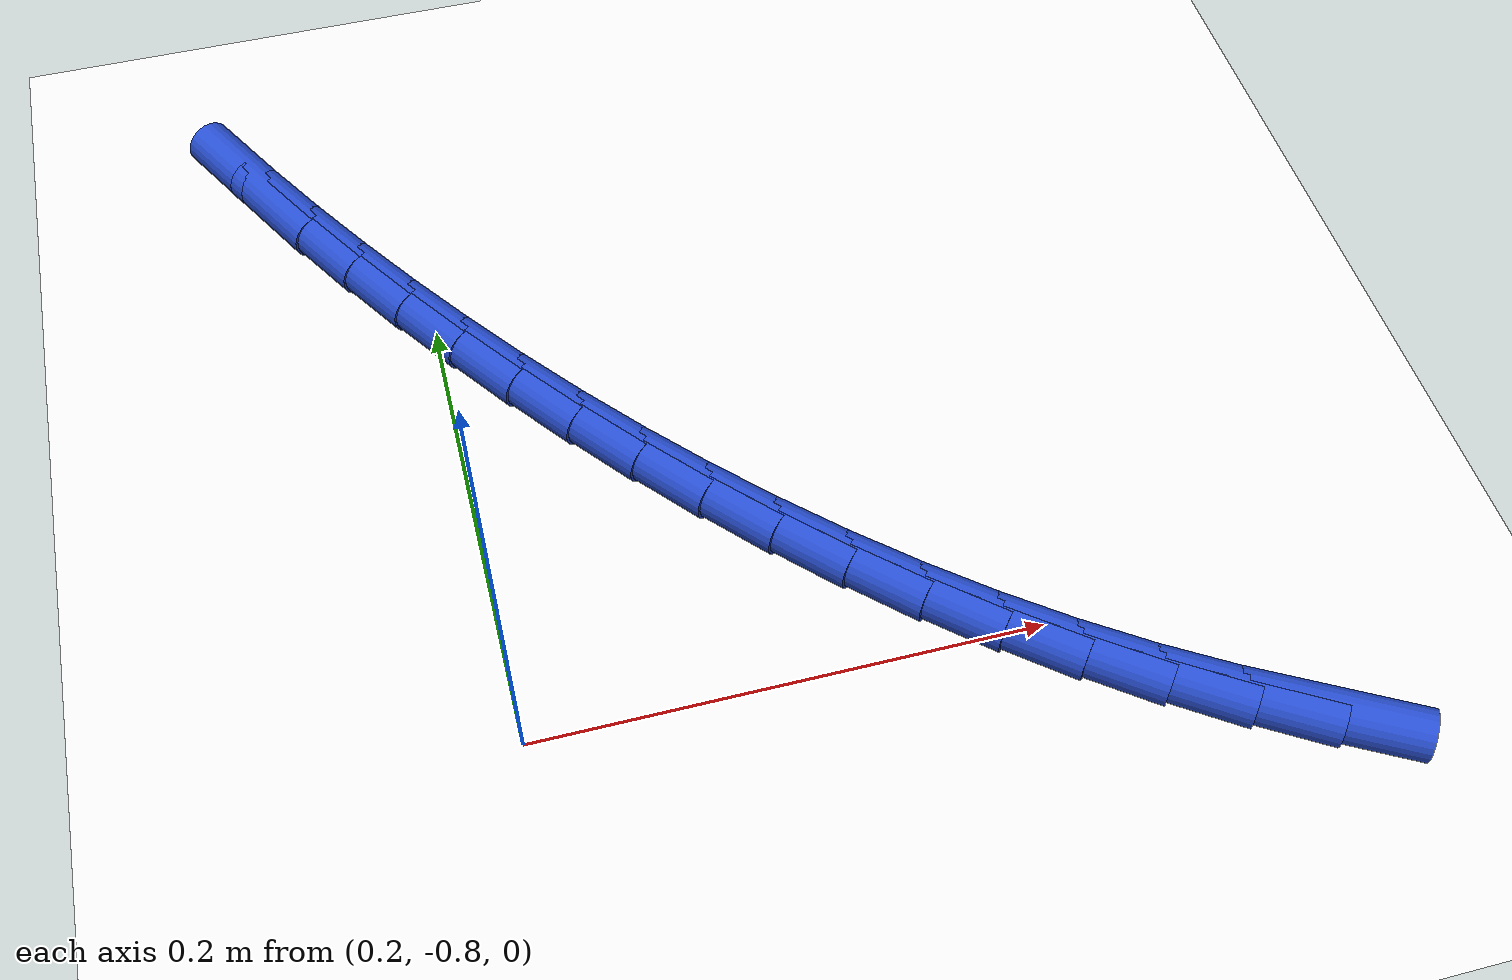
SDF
<sdf version="1.6">
 <world name="default">
  <model name="ground_plane">
   <static>1</static>
   <link name="link">
    <collision name="collision">
     <geometry><plane><normal>0 0 1</normal><size>100 100</size></plane></geometry>
     <surface><friction><ode><mu>100</mu><mu2>50</mu2></ode></friction></surface>
    </collision>
    <visual name="visual">
     <cast_shadows>0</cast_shadows>
     <geometry><plane><normal>0 0 1</normal><size>100 100</size></plane></geometry>
     <material>
      <script><uri>file://media/materials/scripts/gazebo.material</uri><name>Gazebo/WhiteGlow</name></script>
     </material>
    </visual>
   </link>
  </model>
  <model name="line">
   <link name="link_177">
    <pose>0.4807668284014739 -0.8642831028752944 0.01 0 1.57 -0.5142089864139942</pose>
    <collision name="collision">
     <geometry><cylinder><radius>0.01</radius><length>0.08</length></cylinder></geometry>
    </collision>
    <visual name="visual">
     <material>
      <script><name>Gazebo/Blue</name><uri>file://media/materials/scripts/gazebo.material</uri></script>
     </material>
     <geometry><cylinder><radius>0.01</radius><length>0.08</length></cylinder></geometry>
    </visual>
   </link>
   <link name="link_178">
    <pose>0.4540423060394703 -0.8491864818684237 0.01 0 1.57 -0.5630628116542696</pose>
    <collision name="collision">
     <geometry><cylinder><radius>0.01</radius><length>0.08</length></cylinder></geometry>
    </collision>
    <visual name="visual">
     <material>
      <script><name>Gazebo/Blue</name><uri>file://media/materials/scripts/gazebo.material</uri></script>
     </material>
     <geometry><cylinder><radius>0.01</radius><length>0.08</length></cylinder></geometry>
    </visual>
   </link>
   <link name="link_179">
    <pose>0.42802987667862774 -0.8327668003176407 0.01 0 1.57 -0.6104504864343999</pose>
    <collision name="collision">
     <geometry><cylinder><radius>0.01</radius><length>0.08</length></cylinder></geometry>
    </collision>
    <visual name="visual">
     <material>
      <script><name>Gazebo/Blue</name><uri>file://media/materials/scripts/gazebo.material</uri></script>
     </material>
     <geometry><cylinder><radius>0.01</radius><length>0.08</length></cylinder></geometry>
    </visual>
   </link>
   <link name="link_180">
    <pose>0.40273554128945893 -0.8150711459111458 0.01 0 1.57 -0.6552863511071776</pose>
    <collision name="collision">
     <geometry><cylinder><radius>0.01</radius><length>0.08</length></cylinder></geometry>
    </collision>
    <visual name="visual">
     <material>
      <script><name>Gazebo/Blue</name><uri>file://media/materials/scripts/gazebo.material</uri></script>
     </material>
     <geometry><cylinder><radius>0.01</radius><length>0.08</length></cylinder></geometry>
    </visual>
   </link>
   <link name="link_181">
    <pose>0.3781567804390839 -0.7961804135851012 0.01 0 1.57 -0.6976202950283533</pose>
    <collision name="collision">
     <geometry><cylinder><radius>0.01</radius><length>0.08</length></cylinder></geometry>
    </collision>
    <visual name="visual">
     <material>
      <script><name>Gazebo/Blue</name><uri>file://media/materials/scripts/gazebo.material</uri></script>
     </material>
     <geometry><cylinder><radius>0.01</radius><length>0.08</length></cylinder></geometry>
    </visual>
   </link>
   <link name="link_182">
    <pose>0.3542910746946218 -0.7761754982756668 0.01 0 1.57 -0.7375323963409737</pose>
    <collision name="collision">
     <geometry><cylinder><radius>0.01</radius><length>0.08</length></cylinder></geometry>
    </collision>
    <visual name="visual">
     <material>
      <script><name>Gazebo/Blue</name><uri>file://media/materials/scripts/gazebo.material</uri></script>
     </material>
     <geometry><cylinder><radius>0.01</radius><length>0.08</length></cylinder></geometry>
    </visual>
   </link>
   <link name="link_183">
    <pose>0.3311359046231913 -0.7551372949190032 0.01 0 1.57 -0.7751244367295861</pose>
    <collision name="collision">
     <geometry><cylinder><radius>0.01</radius><length>0.08</length></cylinder></geometry>
    </collision>
    <visual name="visual">
     <material>
      <script><name>Gazebo/Blue</name><uri>file://media/materials/scripts/gazebo.material</uri></script>
     </material>
     <geometry><cylinder><radius>0.01</radius><length>0.08</length></cylinder></geometry>
    </visual>
   </link>
   <link name="link_184">
    <pose>0.3086887507919128 -0.7331466984512721 0.01 0 1.57 -0.8105126884951711</pose>
    <collision name="collision">
     <geometry><cylinder><radius>0.01</radius><length>0.08</length></cylinder></geometry>
    </collision>
    <visual name="visual">
     <material>
      <script><name>Gazebo/Blue</name><uri>file://media/materials/scripts/gazebo.material</uri></script>
     </material>
     <geometry><cylinder><radius>0.01</radius><length>0.08</length></cylinder></geometry>
    </visual>
   </link>
   <link name="link_185">
    <pose>0.28694709376790545 -0.7102846038086346 0.01 0 1.57 -0.8438220364919798</pose>
    <collision name="collision">
     <geometry><cylinder><radius>0.01</radius><length>0.08</length></cylinder></geometry>
    </collision>
    <visual name="visual">
     <material>
      <script><name>Gazebo/Blue</name><uri>file://media/materials/scripts/gazebo.material</uri></script>
     </material>
     <geometry><cylinder><radius>0.01</radius><length>0.08</length></cylinder></geometry>
    </visual>
   </link>
   <link name="link_186">
    <pose>0.2659084141182882 -0.6866319059272508 0.01 0 1.57 -0.8751813685544414</pose>
    <collision name="collision">
     <geometry><cylinder><radius>0.01</radius><length>0.08</length></cylinder></geometry>
    </collision>
    <visual name="visual">
     <material>
      <script><name>Gazebo/Blue</name><uri>file://media/materials/scripts/gazebo.material</uri></script>
     </material>
     <geometry><cylinder><radius>0.01</radius><length>0.08</length></cylinder></geometry>
    </visual>
   </link>
   <link name="link_187">
    <pose>0.24557019241018058 -0.6622694997432819 0.01 0 1.57 -0.9047200959928029</pose>
    <collision name="collision">
     <geometry><cylinder><radius>0.01</radius><length>0.08</length></cylinder></geometry>
    </collision>
    <visual name="visual">
     <material>
      <script><name>Gazebo/Blue</name><uri>file://media/materials/scripts/gazebo.material</uri></script>
     </material>
     <geometry><cylinder><radius>0.01</radius><length>0.08</length></cylinder></geometry>
    </visual>
   </link>
   <link name="link_188">
    <pose>0.22592990921070194 -0.6372782801928888 0.01 0 1.57 -0.9325656353699748</pose>
    <collision name="collision">
     <geometry><cylinder><radius>0.01</radius><length>0.08</length></cylinder></geometry>
    </collision>
    <visual name="visual">
     <material>
      <script><name>Gazebo/Blue</name><uri>file://media/materials/scripts/gazebo.material</uri></script>
     </material>
     <geometry><cylinder><radius>0.01</radius><length>0.08</length></cylinder></geometry>
    </visual>
   </link>
   <link name="link_189">
    <pose>0.2069850450869712 -0.6117391422122318 0.01 0 1.57 -0.9588416798924776</pose>
    <collision name="collision">
     <geometry><cylinder><radius>0.01</radius><length>0.08</length></cylinder></geometry>
    </collision>
    <visual name="visual">
     <material>
      <script><name>Gazebo/Blue</name><uri>file://media/materials/scripts/gazebo.material</uri></script>
     </material>
     <geometry><cylinder><radius>0.01</radius><length>0.08</length></cylinder></geometry>
    </visual>
   </link>
   <link name="link_190">
    <pose>0.18873308060610863 -0.5857329807374732 0.01 0 1.57 -0.9836684455208379</pose>
    <collision name="collision">
     <geometry><cylinder><radius>0.01</radius><length>0.08</length></cylinder></geometry>
    </collision>
    <visual name="visual">
     <material>
      <script><name>Gazebo/Blue</name><uri>file://media/materials/scripts/gazebo.material</uri></script>
     </material>
     <geometry><cylinder><radius>0.01</radius><length>0.08</length></cylinder></geometry>
    </visual>
   </link>
   <link name="link_191">
    <pose>0.17117151680681297 -0.5593406445883475 0.01 0 1.57 -1.0077525968650765</pose>
    <collision name="collision">
     <geometry><cylinder><radius>0.01</radius><length>0.08</length></cylinder></geometry>
    </collision>
    <visual name="visual">
     <material>
      <script><name>Gazebo/Blue</name><uri>file://media/materials/scripts/gazebo.material</uri></script>
     </material>
     <geometry><cylinder><radius>0.01</radius><length>0.08</length></cylinder></geometry>
    </visual>
   </link>
   <link name="link_192">
    <pose>0.15430700346123966 -0.53262237318924 0.01 0 1.57 -1.0326884472516302</pose>
    <collision name="collision">
     <geometry><cylinder><radius>0.01</radius><length>0.08</length></cylinder></geometry>
    </collision>
    <visual name="visual">
     <material>
      <script><name>Gazebo/Blue</name><uri>file://media/materials/scripts/gazebo.material</uri></script>
     </material>
     <geometry><cylinder><radius>0.01</radius><length>0.08</length></cylinder></geometry>
    </visual>
   </link>
   <link name="link_193">
    <pose>0.13816971201259384 -0.5055854185843371 0.01 0 1.57 -1.0587407285916983</pose>
    <collision name="collision">
     <geometry><cylinder><radius>0.01</radius><length>0.08</length></cylinder></geometry>
    </collision>
    <visual name="visual">
     <material>
      <script><name>Gazebo/Blue</name><uri>file://media/materials/scripts/gazebo.material</uri></script>
     </material>
     <geometry><cylinder><radius>0.01</radius><length>0.08</length></cylinder></geometry>
    </visual>
   </link>
  </model>
 </world>
</sdf>
